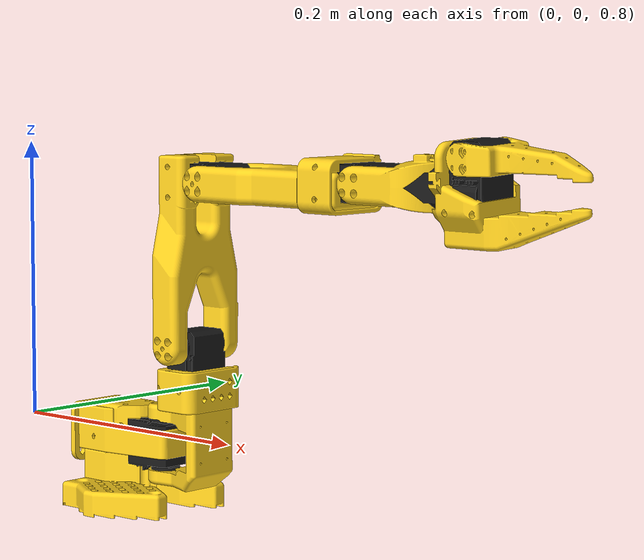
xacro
<?xml version="1.0"?>
<robot name="so101_arm" xmlns:xacro="http://www.ros.org/wiki/xacro">

  <xacro:arg name="controllers_file"
             default="$(find so101_gazebo)/config/gz_controllers.yaml"/>
  <xacro:property name="mesh_dir" value="package://so101_description/meshes"/>

  <!-- Official description macros -->
  <xacro:include filename="$(find so101_description)/urdf/so101_macros.xacro"/>
  <xacro:include filename="$(find so101_description)/urdf/so101_materials.xacro"/>
  <xacro:include filename="$(find so101_description)/urdf/so101_arm_common.xacro"/>
  <xacro:include filename="$(find so101_description)/urdf/end_effectors/so101_ee_common.xacro"/>
  <xacro:include filename="$(find so101_description)/urdf/end_effectors/so101_ee_follower.xacro"/>

  <!-- Build the arm + follower gripper (same calls as the upstream top-level) -->
  <xacro:so101_materials/>
  <xacro:so101_arm_common  mesh_dir="${mesh_dir}" add_transmissions="false"/>
  <xacro:so101_ee_follower mesh_dir="${mesh_dir}" add_transmissions="false"/>

  <!-- Anchor the base to the world so the arm doesn't fall over in physics -->
  <link name="world"/>
  <joint name="world_to_base" type="fixed">
    <parent link="world"/>
    <child  link="base_link"/>
    <!-- Sit the arm ON the table (top at z=0.75), near the front edge facing the
         pick/drop objects (~x=0.35), so it's both visible and reachable. -->
    <origin xyz="0.1 0 0.75" rpy="0 0 0"/>
  </joint>

  <!-- ── ros2_control via the Gazebo Sim system plugin ───────────────────────-->
  <xacro:macro name="gz_joint" params="name">
    <joint name="${name}">
      <command_interface name="position"/>
      <state_interface name="position"/>
      <state_interface name="velocity"/>
    </joint>
  </xacro:macro>

  <ros2_control name="GzSystem" type="system">
    <hardware>
      <plugin>gz_ros2_control/GazeboSimSystem</plugin>
    </hardware>
    <xacro:gz_joint name="shoulder_pan"/>
    <xacro:gz_joint name="shoulder_lift"/>
    <xacro:gz_joint name="elbow_flex"/>
    <xacro:gz_joint name="wrist_flex"/>
    <xacro:gz_joint name="wrist_roll"/>
    <xacro:gz_joint name="gripper"/>
  </ros2_control>

  <gazebo>
    <plugin filename="gz_ros2_control-system"
            name="gz_ros2_control::GazeboSimROS2ControlPlugin">
      <parameters>$(arg controllers_file)</parameters>
    </plugin>
  </gazebo>

  <link name="gripper_camera_link"/>
  <joint name="gripper_camera_joint" type="fixed">
    <parent link="gripper_frame_link"/>
    <child  link="gripper_camera_link"/>
    <origin xyz="0.0 0.0 0.03" rpy="0 1.5708 0"/>
  </joint>

  <gazebo reference="gripper_camera_link">
    <sensor name="gripper_camera" type="camera">
      <update_rate>30</update_rate>
      <topic>gripper_camera/image_raw</topic>
      <camera>
        <horizontal_fov>1.05</horizontal_fov>
        <image><width>640</width><height>480</height><format>R8G8B8</format></image>
        <clip><near>0.02</near><far>10.0</far></clip>
      </camera>
      <always_on>1</always_on>
      <visualize>true</visualize>
    </sensor>
  </gazebo>

</robot>

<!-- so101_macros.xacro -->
<robot xmlns:xacro="http://www.ros.org/wiki/xacro">

  <!-- mesh visual + collision (same origin/mesh) -->
  <xacro:macro name="mesh_vc" params="filename xyz rpy material:=''">
    <visual>
      <origin xyz="${xyz}" rpy="${rpy}"/>
      <geometry><mesh filename="${filename}"/></geometry>
      <xacro:if value="${material != ''}">
        <material name="${material}"/>
      </xacro:if>
    </visual>
    <collision>
      <origin xyz="${xyz}" rpy="${rpy}"/>
      <geometry><mesh filename="${filename}"/></geometry>
    </collision>
  </xacro:macro>

  <xacro:macro name="inertial_block" params="xyz rpy mass ixx ixy ixz iyy iyz izz">
    <inertial>
      <origin xyz="${xyz}" rpy="${rpy}"/>
      <mass value="${mass}"/>
      <inertia ixx="${ixx}" ixy="${ixy}" ixz="${ixz}" iyy="${iyy}" iyz="${iyz}" izz="${izz}"/>
    </inertial>
  </xacro:macro>

  <xacro:macro name="simple_transmission" params="name joint actuator hw_if:='hardware_interface/PositionJointInterface' reduction:='1'">
    <transmission name="${name}">
      <type>transmission_interface/SimpleTransmission</type>
      <joint name="${joint}">
        <hardwareInterface>${hw_if}</hardwareInterface>
      </joint>
      <actuator name="${actuator}">
        <hardwareInterface>${hw_if}</hardwareInterface>
        <mechanicalReduction>${reduction}</mechanicalReduction>
      </actuator>
    </transmission>
  </xacro:macro>

</robot>

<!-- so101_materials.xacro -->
<robot xmlns:xacro="http://www.ros.org/wiki/xacro">

  <xacro:macro name="so101_materials" params="">
    <material name="3d_printed">
      <color rgba="1.0 0.82 0.12 1.0"/>
    </material>
    <material name="sts3215">
      <color rgba="0.1 0.1 0.1 1.0"/>
    </material>
  </xacro:macro>

</robot>

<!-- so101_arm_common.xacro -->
<robot xmlns:xacro="http://www.ros.org/wiki/xacro">

  <xacro:macro name="so101_arm_common"
               params="mesh_dir:='package://so101_description/meshes' add_transmissions:='false'">

    <!-- base_link -->
    <link name="base_link">
      <xacro:inertial_block
        xyz="0.0137179 -5.19711e-05 0.0334843" rpy="0 0 0"
        mass="0.147"
        ixx="0.000114686" ixy="-4.59787e-07" ixz="4.97151e-06"
        iyy="0.000136117" iyz="9.75275e-08" izz="0.000130364"/>

      <xacro:mesh_vc filename="${mesh_dir}/base_motor_holder_so101_v1.stl"
        xyz="-0.00636471 -9.94414e-05 -0.0024" rpy="1.5708 -1.67685e-15 1.5708" material="3d_printed"/>
      <xacro:mesh_vc filename="${mesh_dir}/base_so101_v2.stl"
        xyz="-0.00636471 -8.97657e-09 -0.0024" rpy="1.5708 -2.78073e-29 1.5708" material="3d_printed"/>
      <xacro:mesh_vc filename="${mesh_dir}/sts3215_03a_v1.stl"
        xyz="0.0263353 -8.97657e-09 0.0437" rpy="-8.21148e-16 7.84513e-18 1.249e-15" material="sts3215"/>
      <xacro:mesh_vc filename="${mesh_dir}/waveshare_mounting_plate_so101_v2.stl"
        xyz="-0.0309827 -0.000199441 0.0474" rpy="1.5708 -1.35493e-14 1.5708" material="3d_printed"/>
    </link>

    <!-- shoulder_link -->
    <link name="shoulder_link">
      <xacro:inertial_block
        xyz="-0.0307604 -1.66727e-05 -0.0252713" rpy="0 0 0"
        mass="0.100006"
        ixx="8.3759e-05" ixy="7.55525e-08" ixz="-1.16342e-06"
        iyy="8.10403e-05" iyz="1.54663e-07" izz="2.39783e-05"/>

      <xacro:mesh_vc filename="${mesh_dir}/sts3215_03a_v1.stl"
        xyz="-0.0303992 0.000422241 -0.0417" rpy="1.5708 1.5708 0" material="sts3215"/>
      <xacro:mesh_vc filename="${mesh_dir}/motor_holder_so101_base_v1.stl"
        xyz="-0.0675992 -0.000177759 0.0158499" rpy="1.5708 -1.5708 0" material="3d_printed"/>
      <xacro:mesh_vc filename="${mesh_dir}/rotation_pitch_so101_v1.stl"
        xyz="0.0122008 2.22413e-05 0.0464" rpy="-1.5708 2.35221e-33 0" material="3d_printed"/>
    </link>

    <!-- upper_arm_link -->
    <link name="upper_arm_link">
      <xacro:inertial_block
        xyz="-0.0898471 -0.00838224 0.0184089" rpy="0 0 0"
        mass="0.103"
        ixx="4.08002e-05" ixy="-1.97819e-05" ixz="-4.03016e-08"
        iyy="0.000147318" iyz="8.97326e-09" izz="0.000142487"/>

      <xacro:mesh_vc filename="${mesh_dir}/sts3215_03a_v1.stl"
        xyz="-0.11257 -0.0155 0.0187" rpy="-3.14159 -5.27356e-16 -1.5708" material="sts3215"/>
      <xacro:mesh_vc filename="${mesh_dir}/upper_arm_so101_v1.stl"
        xyz="-0.065085 0.012 0.0182" rpy="3.14159 -0 -1.30911e-30" material="3d_printed"/>
    </link>

    <!-- lower_arm_link -->
    <link name="lower_arm_link">
      <xacro:inertial_block
        xyz="-0.0980701 0.00324376 0.0182831" rpy="0 0 0"
        mass="0.104"
        ixx="2.87438e-05" ixy="7.41152e-06" ixz="1.26409e-06"
        iyy="0.000159844" iyz="-4.90188e-08" izz="0.00014529"/>

      <xacro:mesh_vc filename="${mesh_dir}/under_arm_so101_v1.stl"
        xyz="-0.0648499 -0.032 0.0182" rpy="3.14159 -0 6.67202e-31" material="3d_printed"/>
      <xacro:mesh_vc filename="${mesh_dir}/motor_holder_so101_wrist_v1.stl"
        xyz="-0.0648499 -0.032 0.018" rpy="-3.14159 -2.55351e-15 -1.83387e-30" material="3d_printed"/>
      <xacro:mesh_vc filename="${mesh_dir}/sts3215_03a_v1.stl"
        xyz="-0.1224 0.0052 0.0187" rpy="-3.14159 -7.88861e-31 -3.14159" material="sts3215"/>
    </link>

    <!-- wrist_link -->
    <link name="wrist_link">
      <xacro:inertial_block
        xyz="-0.000103312 -0.0386143 0.0281156" rpy="0 0 0"
        mass="0.079"
        ixx="3.68263e-05" ixy="1.7893e-08" ixz="-5.28128e-08"
        iyy="2.5391e-05" iyz="3.6412e-06" izz="2.1e-05"/>

      <xacro:mesh_vc filename="${mesh_dir}/sts3215_03a_no_horn_v1.stl"
        xyz="8.32667e-17 -0.0424 0.0306" rpy="1.5708 1.5708 0" material="sts3215"/>
      <xacro:mesh_vc filename="${mesh_dir}/wrist_roll_pitch_so101_v2.stl"
        xyz="0 -0.028 0.0181" rpy="-1.5708 -1.5708 0" material="3d_printed"/>
    </link>

    <!-- joints base->wrist -->
    <joint name="shoulder_pan" type="revolute">
      <origin xyz="0.0388353 -8.97657e-09 0.0624" rpy="3.14159 4.18253e-17 -3.14159"/>
      <parent link="base_link"/>
      <child link="shoulder_link"/>
      <axis xyz="0 0 1"/>
      <limit effort="10" velocity="10" lower="-1.91986" upper="1.91986"/>
    </joint>

    <joint name="shoulder_lift" type="revolute">
      <origin xyz="-0.0303992 -0.0182778 -0.0542" rpy="-1.5708 -1.5708 0"/>
      <parent link="shoulder_link"/>
      <child link="upper_arm_link"/>
      <axis xyz="0 0 1"/>
      <limit effort="10" velocity="10" lower="-1.74533" upper="1.74533"/>
    </joint>

    <joint name="elbow_flex" type="revolute">
      <origin xyz="-0.11257 -0.028 1.73763e-16" rpy="-3.63608e-16 8.74301e-16 1.5708"/>
      <parent link="upper_arm_link"/>
      <child link="lower_arm_link"/>
      <axis xyz="0 0 1"/>
      <limit effort="10" velocity="10" lower="-1.69" upper="1.69"/>
    </joint>

    <joint name="wrist_flex" type="revolute">
      <origin xyz="-0.1349 0.0052 3.62355e-17" rpy="4.02456e-15 8.67362e-16 -1.5708"/>
      <parent link="lower_arm_link"/>
      <child link="wrist_link"/>
      <axis xyz="0 0 1"/>
      <limit effort="10" velocity="10" lower="-1.65806" upper="1.65806"/>
    </joint>

    <!-- OPTIONAL transmissions motor1..motor4 -->
    <xacro:if value="${add_transmissions}">
      <xacro:simple_transmission name="shoulder_pan_trans"  joint="shoulder_pan"  actuator="motor1"/>
      <xacro:simple_transmission name="shoulder_lift_trans" joint="shoulder_lift" actuator="motor2"/>
      <xacro:simple_transmission name="elbow_flex_trans"    joint="elbow_flex"    actuator="motor3"/>
      <xacro:simple_transmission name="wrist_flex_trans"    joint="wrist_flex"    actuator="motor4"/>
    </xacro:if>

  </xacro:macro>

</robot>

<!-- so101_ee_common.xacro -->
<robot xmlns:xacro="http://www.ros.org/wiki/xacro">

  <!-- Shared: gripper_frame dummy link -->
  <xacro:macro name="so101_gripper_frame">
    <link name="gripper_frame_link">
      <inertial>
        <origin xyz="0 0 0" rpy="0 0 0"/>
        <mass value="1e-9"/>
        <inertia ixx="0" ixy="0" ixz="0" iyy="0" iyz="0" izz="0"/>
      </inertial>
    </link>

    <joint name="gripper_frame_joint" type="fixed">
      <origin xyz="-0.0079 -0.000218121 -0.0981274" rpy="0 3.14159 0"/>
      <parent link="gripper_link"/>
      <child link="gripper_frame_link"/>
    </joint>
  </xacro:macro>

  <!-- Shared: wrist_roll joint (+ optional transmission) -->
  <xacro:macro name="so101_wrist_roll_joint"
               params="add_transmission:='false'">
    <joint name="wrist_roll" type="revolute">
      <origin xyz="5.55112e-17 -0.0611 0.0181" rpy="1.5708 0.0486795 3.14159"/>
      <parent link="wrist_link"/>
      <child link="gripper_link"/>
      <axis xyz="0 0 1"/>
      <limit effort="10" velocity="10" lower="-2.74385" upper="2.84121"/>
    </joint>

    <xacro:if value="${add_transmission}">
      <xacro:simple_transmission
        name="wrist_roll_trans"
        joint="wrist_roll"
        actuator="motor5"/>
    </xacro:if>
  </xacro:macro>

</robot>

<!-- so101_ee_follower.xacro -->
<robot xmlns:xacro="http://www.ros.org/wiki/xacro">

  <xacro:macro name="so101_ee_follower"
               params="mesh_dir:='package://so101_description/meshes' add_transmissions:='false'">

    <link name="gripper_link">
      <xacro:inertial_block
        xyz="0.000213627 0.000245138 -0.025187" rpy="0 0 0"
        mass="0.087"
        ixx="2.75087e-05" ixy="-3.35241e-07" ixz="-5.7352e-06"
        iyy="4.33657e-05" iyz="-5.17847e-08" izz="3.45059e-05"/>

      <xacro:mesh_vc filename="${mesh_dir}/sts3215_03a_v1.stl"
        xyz="0.0077 0.0001 -0.0234" rpy="-1.5708 -5.19179e-17 -1.66533e-16" material="sts3215"/>

      <xacro:mesh_vc filename="${mesh_dir}/wrist_roll_follower_so101_v1.stl"
        xyz="8.32667e-17 -0.000218214 0.000949706" rpy="-3.14159 -5.55112e-17 0" material="3d_printed"/>
    </link>

    <xacro:so101_gripper_frame />

    <link name="moving_jaw_so101_v1_link">
      <xacro:inertial_block
        xyz="-0.00157495 -0.0300244 0.0192755" rpy="0 0 0"
        mass="0.012"
        ixx="6.61427e-06" ixy="-3.19807e-07" ixz="-5.90717e-09"
        iyy="1.89032e-06" iyz="-1.09945e-07" izz="5.28738e-06"/>

      <xacro:mesh_vc filename="${mesh_dir}/moving_jaw_so101_v1.stl"
        xyz="-5.55112e-17 -5.55112e-17 0.0189" rpy="9.53145e-17 6.93889e-18 1.24077e-24" material="3d_printed"/>
    </link>

    <joint name="gripper" type="revolute">
      <origin xyz="0.0202 0.0188 -0.0234" rpy="1.5708 -5.24284e-08 -1.41553e-15"/>
      <parent link="gripper_link"/>
      <child link="moving_jaw_so101_v1_link"/>
      <axis xyz="0 0 1"/>
      <limit effort="10" velocity="10" lower="-0.174533" upper="1.74533"/>
    </joint>

    <!-- follower-only motor6 transmission (optional) -->
    <xacro:if value="${add_transmissions}">
      <xacro:simple_transmission
        name="gripper_trans"
        joint="gripper"
        actuator="${actuator_prefix}motor6"/>
    </xacro:if>

    <xacro:so101_wrist_roll_joint
      add_transmission="${add_transmissions}"/>

  </xacro:macro>

</robot>
